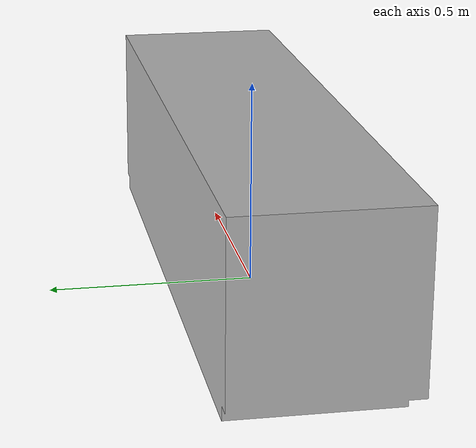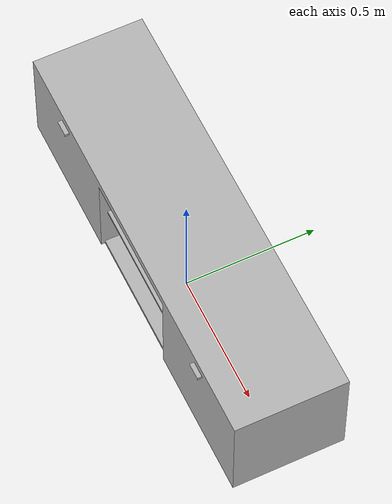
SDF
<?xml version='1.0' encoding='utf-8'?>
<sdf version="1.6">
  <model name="TVStand">
   <static>true</static>
    <link name="body">
      <pose>0 0 0 0 0 0</pose>

      <visual name="visual">
        <geometry>
          <mesh>
            <uri>meshes/TVStand.obj</uri>
          </mesh>
        </geometry>
      </visual>

      <collision name="collision">
        <geometry>
          <mesh>
            <uri>meshes/TVStand_Col.obj</uri>
          </mesh>
        </geometry>
      </collision>

    </link>
  </model>
</sdf>
